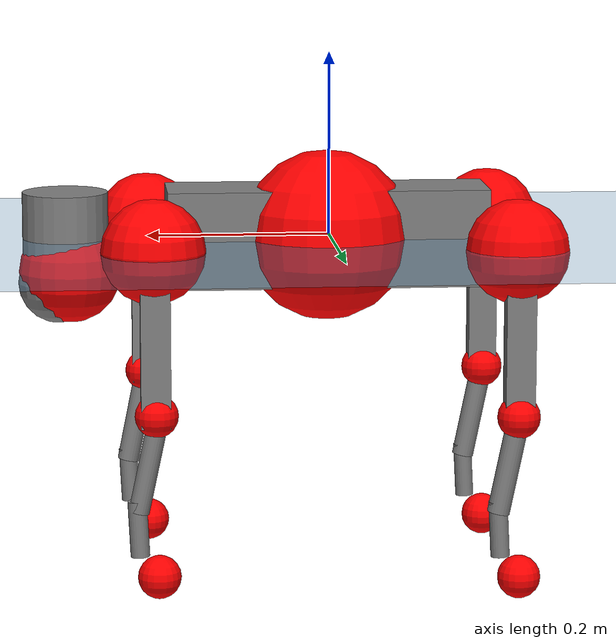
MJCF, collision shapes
<mujoco model="go2">
  <compiler angle="radian" assetdir="assets" balanceinertia="true" inertiafromgeom="false"/>

  <option timestep="0.005" density="1.2" viscosity="2e-05"/>

  <size nkey="1"/>

  <visual>
    <quality shadowsize="8192"/>
    <map shadowclip="0.5"/>
  </visual>

  <default>
    <default class="/">
      <geom contype="0" conaffinity="0" group="1" solref="-1000 -80"/>
      <site size="0.01 0.005 0.005" group="5"/>
      <general forcelimited="true" biastype="affine" gainprm="20" biasprm="0 -20 -0.5"/>
      <default class="go2">
        <joint armature="0.01" damping="0.01" frictionloss="0.2"/>
        <geom condim="1" margin="0.001"/>
        <default class="visual">
          <geom type="mesh" group="2"/>
        </default>
        <default class="collision">
          <geom group="3"/>
          <default class="foot">
            <geom size="0.022 0 0" condim="6" priority="1" friction="0.8 0.02 0.01" solimp="0.015 1 0.022"/>
          </default>
        </default>
        <default class="reward_collision_sphere">
          <geom group="5" rgba="1 0 0 1"/>
        </default>
      </default>
    </default>
  </default>

  <asset>
    <texture type="skybox" colorspace="auto" name="//unnamed_texture_0" builtin="gradient" rgb1="0.95 0.95 0.95" rgb2="0.95 0.95 0.95" width="100" height="600"/>
    <texture type="2d" colorspace="auto" name="texplane" builtin="checker" rgb1="0.345 0.575 0.748" rgb2="0.345 0.575 0.748" markrgb="1 1 1" width="512" height="512"/>
    <material name="MatPlane" class="/" texture="texplane" texuniform="true" texrepeat="2 2" specular="0.9"/>
    <material name="metal" class="/" rgba="0.9 0.95 0.95 1"/>
    <material name="black" class="/" rgba="0 0 0 1"/>
    <material name="white" class="/"/>
    <material name="gray" class="/" rgba="0.671705 0.692426 0.77427 1"/>
    <mesh name="base_0" class="/" file="base_0.obj"/>
    <mesh name="base_1" class="/" file="base_1.obj"/>
    <mesh name="base_2" class="/" file="base_2.obj"/>
    <mesh name="base_3" class="/" file="base_3.obj"/>
    <mesh name="base_4" class="/" file="base_4.obj"/>
    <mesh name="hip_0" class="/" file="hip_0.obj"/>
    <mesh name="hip_1" class="/" file="hip_1.obj"/>
    <mesh name="thigh_0" class="/" file="thigh_0.obj"/>
    <mesh name="thigh_1" class="/" file="thigh_1.obj"/>
    <mesh name="thigh_mirror_0" class="/" file="thigh_mirror_0.obj"/>
    <mesh name="thigh_mirror_1" class="/" file="thigh_mirror_1.obj"/>
    <mesh name="calf_0" class="/" file="calf_0.obj"/>
    <mesh name="calf_1" class="/" file="calf_1.obj"/>
    <mesh name="calf_mirror_0" class="/" file="calf_mirror_0.obj"/>
    <mesh name="calf_mirror_1" class="/" file="calf_mirror_1.obj"/>
    <mesh name="foot" class="/" file="foot.obj"/>
  </asset>

  <worldbody>
    <geom name="floor" class="/" size="100 100 0.125" type="plane" group="0" material="MatPlane"/>
    <light name="toplight_shadow" class="/" pos="0 0 5" dir="0.0990148 0.0990148 -0.990148" type="directional" ambient="0.04 0.04 0.04" diffuse="0.55 0.55 0.55" specular="0.12 0.12 0.12"/>
    <light name="toplight_fill" class="/" pos="0 0 5" dir="0.0990148 0.0990148 -0.990148" type="directional" castshadow="false" ambient="0.04 0.04 0.04" diffuse="0.3 0.3 0.3" specular="0.08 0.08 0.08"/>
    <body name="trunk" childclass="go2" pos="0.00259291 -0.00022753 -0.000614397" quat="0.999999 -0.00121055 -0.000180858 0.00057892">
      <inertial pos="0.0183303 0.000497274 -0.0039977" quat="9.15584e-05 0.71001 -0.00038743 0.704192" mass="5.46285" diaginertia="0.109005 0.0849536 0.0094484"/>
      <joint name="//unnamed_joint_0" type="free" armature="0" damping="0" frictionloss="0"/>
      <geom name="//unnamed_geom_1" class="visual" material="black" mesh="base_0"/>
      <geom name="//unnamed_geom_2" class="visual" material="black" mesh="base_1"/>
      <geom name="//unnamed_geom_3" class="visual" material="black" mesh="base_2"/>
      <geom name="//unnamed_geom_4" class="visual" material="white" mesh="base_3"/>
      <geom name="//unnamed_geom_5" class="visual" material="gray" mesh="base_4"/>
      <geom name="trunk_1" class="collision" size="0.175819 0.0436978 0.0532785" type="box"/>
      <geom name="trunk_2" class="collision" size="0.0467356 0.042062" pos="0.286195 0 0.00828021" type="cylinder"/>
      <geom name="trunk_3" class="collision" size="0.0439314" pos="0.294228 0 -0.0496812"/>
      <geom name="//unnamed_geom_9" class="reward_collision_sphere" size="0.0934711"/>
      <geom name="//unnamed_geom_10" class="reward_collision_sphere" size="0.0560827" pos="0.281174 0 -0.0372609"/>
      <site name="imu" pos="-0.0258937 0.00578202 0.0485387" size="0.00934711"/>
      <camera name="track" pos="0 -1.94384 0" quat="0.707107 0.707107 0 0" mode="trackcom"/>
      <camera name="ego_camera" pos="0.313308 0 0.0372609" quat="-0.5 -0.5 0.5 0.5"/>
      <body name="FL_hip" pos="0.194558 0.0469754 0.00213282" quat="1 3.04592e-06 -2.99375e-05 8.86614e-05">
        <inertial pos="-0.00646014 2.55931e-05 0.000927446" quat="0.497222 0.499653 0.505812 0.497263" mass="0.54215" diaginertia="0.000919358 0.000516122 0.000186772"/>
        <joint name="FL_hip_joint" pos="0 0 0" axis="0.999908 0.0124092 -0.00545581" range="-0.995937 1.05781" armature="0.00918233" damping="0.0131138" frictionloss="0.185889"/>
        <geom name="//unnamed_geom_11" class="visual" material="metal" mesh="hip_0"/>
        <geom name="//unnamed_geom_12" class="visual" material="gray" mesh="hip_1"/>
        <geom name="//unnamed_geom_13" class="collision" size="0.0429967 0.0186942" pos="0 0.0777537 0" quat="0.707107 0.707107 0 0" type="cylinder"/>
        <geom name="//unnamed_geom_14" class="reward_collision_sphere" size="0.0560827" pos="0 0.0680345 0"/>
        <body name="FL_thigh" pos="-0.000426629 0.0930608 0.00262289" quat="0.999999 -0.00106211 0.000568535 -6.43029e-05">
          <inertial pos="-0.00200223 -0.0232709 -0.0296556" quat="0.829523 0.0844851 -0.0196085 0.551697" mass="0.910595" diaginertia="0.00596419 0.00493704 0.000343072"/>
          <joint name="FL_thigh_joint" pos="0 0 0" axis="-0.00816012 0.999967 8.91028e-05" range="-1.55374 3.48764" armature="0.00933627" damping="0.0104435" frictionloss="0.190431"/>
          <geom name="//unnamed_geom_15" class="visual" material="metal" mesh="thigh_0"/>
          <geom name="//unnamed_geom_16" class="visual" material="gray" mesh="thigh_1"/>
          <geom name="//unnamed_geom_17" class="collision" size="0.0995468 0.0114502 0.0158901" pos="0 0 -0.0881842" quat="0.707107 0 0.707107 0" type="box"/>
          <body name="FL_calf" pos="-0.000956515 -0.0029963 -0.175787" quat="1 0.000223557 -0.00055077 0.000525469">
            <inertial pos="0.00385804 -0.000264954 -0.114522" quat="0.710586 0.00169877 -0.00428403 0.703596" mass="0.196804" diaginertia="0.00154119 0.00133833 2.11402e-05"/>
            <joint name="FL_calf_joint" pos="0 0 0" axis="0.00370612 0.999933 0.0109419" stiffness="0.0095951" range="-2.77826 -0.834196" armature="0.0097308" damping="0" frictionloss="0.196588"/>
            <geom name="//unnamed_geom_18" class="visual" material="gray" mesh="calf_0"/>
            <geom name="//unnamed_geom_19" class="visual" material="black" mesh="calf_1"/>
            <geom name="FL_calf0" class="collision" size="0.0112165 0.0560827" pos="0.00803354 0 -0.0496812" quat="0.994493 0 -0.104807 0" type="cylinder"/>
            <geom name="//unnamed_geom_21" class="collision" size="0.0102818 0.0303781" pos="0.0200838 0 -0.122547" quat="0.999688 0 0.0249974 0" type="cylinder"/>
            <geom name="//unnamed_geom_22" class="visual" pos="0 0 -0.176368" quat="1 0 0 0" material="black" mesh="foot"/>
            <geom name="FL_foot" class="foot" size="0.0183873" pos="-0.00200838 0 -0.176368"/>
            <geom name="//unnamed_geom_24" class="reward_collision_sphere" size="0.0233678"/>
            <geom name="//unnamed_geom_25" class="reward_collision_sphere" size="0.0233678" pos="-0.00200838 0 -0.176368"/>
            <site name="FL_foot" class="foot" pos="-0.00200838 0 -0.176368" size="0.00934711"/>
          </body>
        </body>
      </body>
      <body name="FR_hip" pos="0.194069 -0.0460497 -0.00202677" quat="0.999999 0.00100706 0.000401264 -0.00018885">
        <inertial pos="-0.00403022 -0.00453261 -0.000217184" quat="0.492986 0.499798 0.49982 0.507294" mass="0.547668" diaginertia="0.000862872 0.000508945 0.000179735"/>
        <joint name="FR_hip_joint" pos="0 0 0" axis="0.999956 -0.00852821 -0.0037968" stiffness="0.00175793" range="-1.05834 1.05317" armature="0.00900902" damping="0.0131572" frictionloss="0.16269"/>
        <geom name="//unnamed_geom_26" class="visual" pos="0 1.2536e-09 5.37694e-08" quat="4.63268e-05 1 0 0" material="metal" mesh="hip_0"/>
        <geom name="//unnamed_geom_27" class="visual" pos="0 2.03223e-09 -1.32992e-07" quat="4.63268e-05 1 0 0" material="gray" mesh="hip_1"/>
        <geom name="//unnamed_geom_28" class="collision" size="0.0429967 0.0186942" pos="0 -0.0777537 0" quat="0.707107 0.707107 0 0" type="cylinder"/>
        <geom name="//unnamed_geom_29" class="reward_collision_sphere" size="0.0560827" pos="0 -0.0680345 0"/>
        <body name="FR_thigh" pos="0.000535635 -0.0953718 -0.000699562" quat="1 -0.000237503 -9.82205e-05 -2.1877e-05">
          <inertial pos="-0.00216582 0.0194784 -0.0269124" quat="0.544279 -0.0179327 0.0842735 0.834468" mass="0.951817" diaginertia="0.00602856 0.00505781 0.000349932"/>
          <joint name="FR_thigh_joint" pos="0 0 0" axis="0.00404634 -0.99999 0.00177122" range="-3.4771 1.61833" armature="0.00930098" damping="0.0147331" frictionloss="0.190787"/>
          <geom name="//unnamed_geom_30" class="visual" material="metal" mesh="thigh_mirror_0"/>
          <geom name="//unnamed_geom_31" class="visual" material="gray" mesh="thigh_mirror_1"/>
          <geom name="//unnamed_geom_32" class="collision" size="0.0995468 0.0114502 0.0158901" pos="0 0 -0.0881842" quat="0.707107 0 0.707107 0" type="box"/>
          <body name="FR_calf" pos="0.000449301 -0.0028983 -0.176137" quat="1 -2.90138e-05 4.45882e-05 -9.99757e-05">
            <inertial pos="0.00663643 0.000913002 -0.117132" quat="0.712051 -0.00922219 -0.00184271 0.702065" mass="0.195551" diaginertia="0.00151548 0.00126907 2.00948e-05"/>
            <joint name="FR_calf_joint" pos="0 0 0" axis="-0.0122802 -0.999906 -0.00615072" range="0.842086 2.76462" armature="0.00956502" damping="0.0250962" frictionloss="0.186451"/>
            <geom name="//unnamed_geom_33" class="visual" material="gray" mesh="calf_mirror_0"/>
            <geom name="//unnamed_geom_34" class="visual" material="black" mesh="calf_mirror_1"/>
            <geom name="FR_calf0" class="collision" size="0.0121512 0.0560827" pos="0.0100419 0 -0.0496812" quat="0.995004 0 -0.0998334 0" type="cylinder"/>
            <geom name="//unnamed_geom_36" class="collision" size="0.0102818 0.0303781" pos="0.0200838 0 -0.122547" quat="0.999688 0 0.0249974 0" type="cylinder"/>
            <geom name="//unnamed_geom_37" class="visual" pos="0 0 -0.176368" quat="1 0 0 0" material="black" mesh="foot"/>
            <geom name="FR_foot" class="foot" size="0.0222966" pos="-0.00200838 0 -0.176368"/>
            <geom name="//unnamed_geom_39" class="reward_collision_sphere" size="0.0233678"/>
            <geom name="//unnamed_geom_40" class="reward_collision_sphere" size="0.0233678" pos="-0.00200838 0 -0.176368"/>
            <site name="FR_foot" class="foot" pos="-0.00200838 0 -0.176368" size="0.00934711"/>
          </body>
        </body>
      </body>
      <body name="RL_hip" pos="-0.19494 0.0460229 -0.00249416" quat="1 0.000434078 4.39115e-05 0.000305639">
        <inertial pos="0.00513778 0.00490449 -0.0020199" quat="0.501929 0.499051 0.489819 0.509011" mass="0.564724" diaginertia="0.000889988 0.000506805 0.000190543"/>
        <joint name="RL_hip_joint" pos="0 0 0" axis="-0.999861 0.0165172 -0.00218438" stiffness="0.00959077" range="-1.03712 1.01511" armature="0.00824529" damping="0.00967978" frictionloss="0.212042"/>
        <geom name="//unnamed_geom_41" class="visual" pos="-1.53474e-09 0 -3.00844e-07" quat="4.63268e-05 0 1 0" material="metal" mesh="hip_0"/>
        <geom name="//unnamed_geom_42" class="visual" pos="-2.48799e-09 0 -2.66805e-07" quat="4.63268e-05 0 1 0" material="gray" mesh="hip_1"/>
        <geom name="//unnamed_geom_43" class="collision" size="0.0429967 0.0186942" pos="0 0.0777537 0" quat="0.707107 0.707107 0 0" type="cylinder"/>
        <geom name="//unnamed_geom_44" class="reward_collision_sphere" size="0.0560827" pos="0 0.0680345 0"/>
        <body name="RL_thigh" pos="-0.000305072 0.0893052 0.00221264" quat="1 8.56132e-05 0.000222428 -6.73442e-05">
          <inertial pos="-0.00376307 -0.0211693 -0.0280999" quat="0.829368 0.0833766 -0.0209399 0.55205" mass="0.961292" diaginertia="0.00604598 0.00494932 0.000345917"/>
          <joint name="RL_thigh_joint" pos="0 0 0" axis="-0.0111302 0.999934 -0.00273499" stiffness="0.0108912" range="-0.516354 4.54566" armature="0.0103907" damping="0.00286576" frictionloss="0.185646"/>
          <geom name="//unnamed_geom_45" class="visual" material="metal" mesh="thigh_0"/>
          <geom name="//unnamed_geom_46" class="visual" material="gray" mesh="thigh_1"/>
          <geom name="//unnamed_geom_47" class="collision" size="0.0995468 0.0114502 0.0158901" pos="0 0 -0.0881842" quat="0.707107 0 0.707107 0" type="box"/>
          <body name="RL_calf" pos="5.15755e-05 -0.000169699 -0.179166" quat="1 0.000212939 -0.000300289 -0.000265726">
            <inertial pos="0.00665045 0.0022047 -0.116523" quat="0.708528 -0.00259101 -0.00493949 0.705661" mass="0.196066" diaginertia="0.00148997 0.00126769 1.98761e-05"/>
            <joint name="RL_calf_joint" pos="0 0 0" axis="-0.00386492 0.999992 0.000252203" range="-2.72616 -0.826474" armature="0.00989639" damping="0" frictionloss="0.212047"/>
            <geom name="//unnamed_geom_48" class="visual" material="gray" mesh="calf_0"/>
            <geom name="//unnamed_geom_49" class="visual" material="black" mesh="calf_1"/>
            <geom name="RL_calf0" class="collision" size="0.0121512 0.0560827" pos="0.0100419 0 -0.0496812" quat="0.995004 0 -0.0998334 0" type="cylinder"/>
            <geom name="//unnamed_geom_51" class="collision" size="0.0102818 0.0303781" pos="0.0200838 0 -0.122547" quat="0.999688 0 0.0249974 0" type="cylinder"/>
            <geom name="//unnamed_geom_52" class="visual" pos="0 0 -0.176368" quat="1 0 0 0" material="black" mesh="foot"/>
            <geom name="RL_foot" class="foot" size="0.0170718" pos="-0.00200838 0 -0.176368"/>
            <geom name="//unnamed_geom_54" class="reward_collision_sphere" size="0.0233678"/>
            <geom name="//unnamed_geom_55" class="reward_collision_sphere" size="0.0233678" pos="-0.00200838 0 -0.176368"/>
            <site name="RL_foot" class="foot" pos="-0.00200838 0 -0.176368" size="0.00934711"/>
          </body>
        </body>
      </body>
      <body name="RR_hip" pos="-0.194429 -0.0466643 -0.00114081" quat="0.999999 -0.00057187 0.000967902 -0.000263162">
        <inertial pos="0.0080414 0.000508857 -0.00289196" quat="0.507103 0.497959 0.4953 0.499561" mass="0.552457" diaginertia="0.000897423 0.00051234 0.00018655"/>
        <joint name="RR_hip_joint" pos="0 0 0" axis="-0.999902 -0.00950951 0.0102664" stiffness="0.00558419" range="-1.04932 1.03085" armature="0.00902776" damping="0.0131092" frictionloss="0.177441"/>
        <geom name="//unnamed_geom_56" class="visual" pos="1.53362e-09 1.2536e-09 -3.54613e-07" quat="2.14617e-09 4.63268e-05 4.63268e-05 -1" material="metal" mesh="hip_0"/>
        <geom name="//unnamed_geom_57" class="visual" pos="2.49075e-09 2.03223e-09 -1.33813e-07" quat="2.14617e-09 4.63268e-05 4.63268e-05 -1" material="gray" mesh="hip_1"/>
        <geom name="//unnamed_geom_58" class="collision" size="0.0429967 0.0186942" pos="0 -0.0777537 0" quat="0.707107 0.707107 0 0" type="cylinder"/>
        <geom name="//unnamed_geom_59" class="reward_collision_sphere" size="0.0560827" pos="0 -0.0680345 0"/>
        <body name="RR_thigh" pos="0.00117305 -0.0921428 -0.00237069" quat="1 -8.46233e-05 -0.00020004 1.52095e-05">
          <inertial pos="-0.00274564 0.0214585 -0.0271421" quat="0.551724 -0.0201015 0.0848554 0.829455" mass="0.910172" diaginertia="0.00614823 0.00518326 0.000340918"/>
          <joint name="RR_thigh_joint" pos="0 0 0" axis="-0.0109341 -0.999922 0.00609932" range="-4.53492 0.576695" armature="0.00944618" damping="0.0102032" frictionloss="0.177296"/>
          <geom name="//unnamed_geom_60" class="visual" material="metal" mesh="thigh_mirror_0"/>
          <geom name="//unnamed_geom_61" class="visual" material="gray" mesh="thigh_mirror_1"/>
          <geom name="//unnamed_geom_62" class="collision" size="0.0995468 0.0114502 0.0158901" pos="0 0 -0.0881842" quat="0.707107 0 0.707107 0" type="box"/>
          <body name="RR_calf" pos="-0.000781556 -0.000472844 -0.176172" quat="1 -9.03098e-05 3.03183e-05 -8.33205e-05">
            <inertial pos="0.0039349 -9.59405e-05 -0.117509" quat="0.706159 -0.00688207 -0.0020063 0.708017" mass="0.196801" diaginertia="0.00152003 0.00127845 2.13613e-05"/>
            <joint name="RR_calf_joint" pos="0 0 0" axis="-0.0174917 -0.999805 -0.00914313" range="0.852341 2.72957" armature="0.00979865" damping="0.0242782" frictionloss="0.195363"/>
            <geom name="//unnamed_geom_63" class="visual" material="gray" mesh="calf_mirror_0"/>
            <geom name="//unnamed_geom_64" class="visual" material="black" mesh="calf_mirror_1"/>
            <geom name="RR_calf0" class="collision" size="0.0121512 0.0560827" pos="0.0100419 0 -0.0496812" quat="0.995004 0 -0.0998334 0" type="cylinder"/>
            <geom name="//unnamed_geom_66" class="collision" size="0.0102818 0.0303781" pos="0.0200838 0 -0.122547" quat="0.999688 0 0.0249974 0" type="cylinder"/>
            <geom name="//unnamed_geom_67" class="visual" pos="0 0 -0.176368" quat="1 0 0 0" material="black" mesh="foot"/>
            <geom name="RR_foot" class="foot" size="0.0208359" pos="-0.00200838 0 -0.176368"/>
            <geom name="//unnamed_geom_69" class="reward_collision_sphere" size="0.0233678"/>
            <geom name="//unnamed_geom_70" class="reward_collision_sphere" size="0.0233678" pos="-0.00200838 0 -0.176368"/>
            <site name="RR_foot" class="foot" pos="-0.00200838 0 -0.176368" size="0.00934711"/>
          </body>
        </body>
      </body>
    </body>
  </worldbody>

  <contact>
    <pair class="/" geom1="floor" geom2="FL_foot" name="//unnamed_contact_0"/>
    <pair class="/" geom1="floor" geom2="FR_foot" name="//unnamed_contact_1"/>
    <pair class="/" geom1="floor" geom2="RL_foot" name="//unnamed_contact_2"/>
    <pair class="/" geom1="floor" geom2="RR_foot" name="//unnamed_contact_3"/>
  </contact>

  <actuator>
    <general name="FL_hip" class="/" joint="FL_hip_joint" forcerange="-21.9258 21.9258" gainprm="19.465" biasprm="0 -19.465 -0.442616"/>
    <general name="FL_thigh" class="/" joint="FL_thigh_joint" forcerange="-21.3279 21.3279" gainprm="19.465" biasprm="0 -19.465 -0.442616"/>
    <general name="FL_calf" class="/" joint="FL_calf_joint" forcerange="-43.496 43.496" gainprm="19.465" biasprm="0 -19.465 -0.442616"/>
    <general name="FR_hip" class="/" joint="FR_hip_joint" forcerange="-21.6698 21.6698" gainprm="19.465" biasprm="0 -19.465 -0.442616"/>
    <general name="FR_thigh" class="/" joint="FR_thigh_joint" forcerange="-23.0026 23.0026" gainprm="19.465" biasprm="0 -19.465 -0.442616"/>
    <general name="FR_calf" class="/" joint="FR_calf_joint" forcerange="-41.5646 41.5646" gainprm="19.465" biasprm="0 -19.465 -0.442616"/>
    <general name="RL_hip" class="/" joint="RL_hip_joint" forcerange="-24.3456 24.3456" gainprm="19.465" biasprm="0 -19.465 -0.442616"/>
    <general name="RL_thigh" class="/" joint="RL_thigh_joint" forcerange="-21.6801 21.6801" gainprm="19.465" biasprm="0 -19.465 -0.442616"/>
    <general name="RL_calf" class="/" joint="RL_calf_joint" forcerange="-38.1208 38.1208" gainprm="19.465" biasprm="0 -19.465 -0.442616"/>
    <general name="RR_hip" class="/" joint="RR_hip_joint" forcerange="-20.5267 20.5267" gainprm="19.465" biasprm="0 -19.465 -0.442616"/>
    <general name="RR_thigh" class="/" joint="RR_thigh_joint" forcerange="-24.4037 24.4037" gainprm="19.465" biasprm="0 -19.465 -0.442616"/>
    <general name="RR_calf" class="/" joint="RR_calf_joint" forcerange="-40.5038 40.5038" gainprm="19.465" biasprm="0 -19.465 -0.442616"/>
  </actuator>

  <sensor>
    <gyro site="imu" name="imu_angular_velocity"/>
    <velocimeter site="imu" name="imu_linear_velocity"/>
    <framelinvel objtype="site" objname="FL_foot" name="FL_foot_global_linear_velocity"/>
    <framelinvel objtype="site" objname="FR_foot" name="FR_foot_global_linear_velocity"/>
    <framelinvel objtype="site" objname="RL_foot" name="RL_foot_global_linear_velocity"/>
    <framelinvel objtype="site" objname="RR_foot" name="RR_foot_global_linear_velocity"/>
  </sensor>

  <keyframe>
    <key name="home" qpos="0 0 0.325 1 0 0 0 0.1 0.8 -1.5 -0.1 -0.8 1.5 -0.1 0.8 -1.5 0.1 -0.8 1.5"/>
  </keyframe>
</mujoco>
